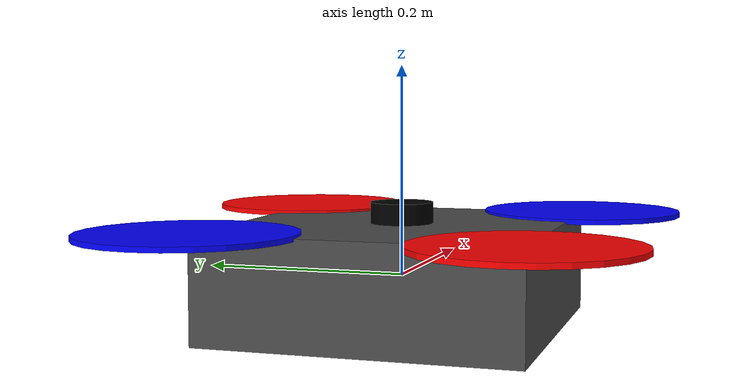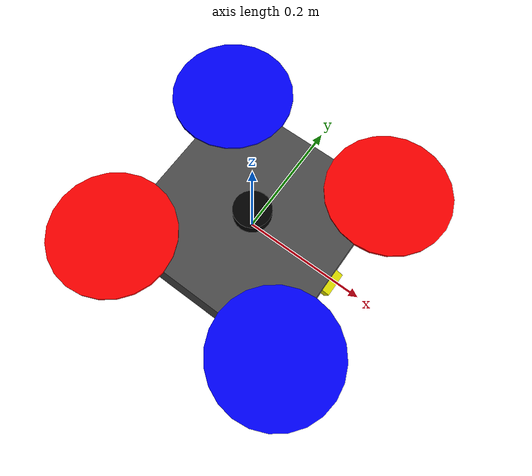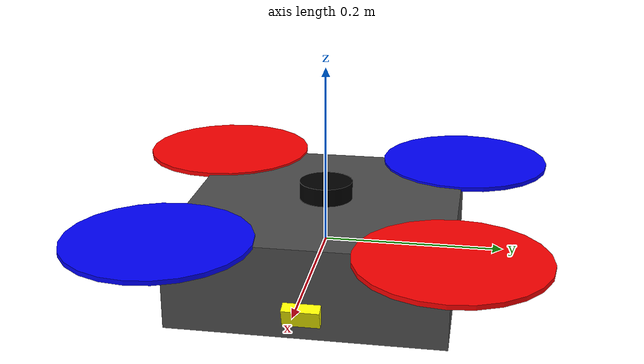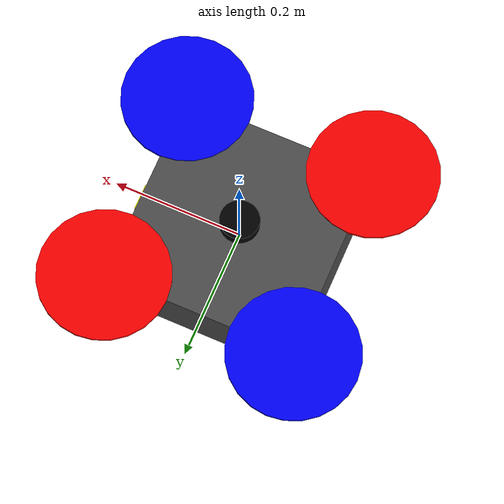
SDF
<?xml version="1.0" ?>
<sdf version="1.9">
  <model name="mini_drone">
    <static>false</static>

    <!-- Main body / base link -->
    <link name="base_link">
      <inertial>
        <mass>1.5</mass>
        <inertia>
          <ixx>0.0125</ixx>
          <iyy>0.0125</iyy>
          <izz>0.0225</izz>
        </inertia>
      </inertial>

      <visual name="body_visual">
        <geometry>
          <box>
            <size>0.3 0.3 0.1</size>
          </box>
        </geometry>
        <material>
          <ambient>0.2 0.2 0.2 1</ambient>
          <diffuse>0.3 0.3 0.3 1</diffuse>
        </material>
      </visual>

      <collision name="body_collision">
        <geometry>
          <box>
            <size>0.3 0.3 0.1</size>
          </box>
        </geometry>
      </collision>

<!-- ARMS (visual only — diagonal struts) -->
      <visual name="arm_fl">
        <pose>0.075 0.075 0.0 0 1.5708 0.7854</pose>
        <geometry><cylinder><radius>0.01</radius><length>0.18</length></cylinder></geometry>
        <material><ambient>0.1 0.1 0.1 1</ambient><diffuse>0.15 0.15 0.15 1</diffuse></material>
      </visual>
      <visual name="arm_fr">
        <pose>0.075 -0.075 0.0 0 1.5708 -0.7854</pose>
        <geometry><cylinder><radius>0.01</radius><length>0.18</length></cylinder></geometry>
        <material><ambient>0.1 0.1 0.1 1</ambient><diffuse>0.15 0.15 0.15 1</diffuse></material>
      </visual>
      <visual name="arm_bl">
        <pose>-0.075 0.075 0.0 0 1.5708 2.3562</pose>
        <geometry><cylinder><radius>0.01</radius><length>0.18</length></cylinder></geometry>
        <material><ambient>0.1 0.1 0.1 1</ambient><diffuse>0.15 0.15 0.15 1</diffuse></material>
      </visual>
      <visual name="arm_br">
        <pose>-0.075 -0.075 0.0 0 1.5708 -2.3562</pose>
        <geometry><cylinder><radius>0.01</radius><length>0.18</length></cylinder></geometry>
        <material><ambient>0.1 0.1 0.1 1</ambient><diffuse>0.15 0.15 0.15 1</diffuse></material>
      </visual>

      <!-- IMU SENSOR -->
      <sensor name="imu_sensor" type="imu">
        <always_on>true</always_on>
        <update_rate>200</update_rate>
        <topic>imu</topic>
        <gz_frame_id>base_link</gz_frame_id>
        <imu>
          <angular_velocity>
            <x><noise type="gaussian"><mean>0</mean><stddev>0.0002</stddev></noise></x>
            <y><noise type="gaussian"><mean>0</mean><stddev>0.0002</stddev></noise></y>
            <z><noise type="gaussian"><mean>0</mean><stddev>0.0002</stddev></noise></z>
          </angular_velocity>
          <linear_acceleration>
            <x><noise type="gaussian"><mean>0</mean><stddev>0.017</stddev></noise></x>
            <y><noise type="gaussian"><mean>0</mean><stddev>0.017</stddev></noise></y>
            <z><noise type="gaussian"><mean>0</mean><stddev>0.017</stddev></noise></z>
          </linear_acceleration>
        </imu>
      </sensor>
    </link>

    <!-- LIDAR LINK AND SENSOR -->
    <link name="lidar_link">
      <pose relative_to="base_link">0 0 0.06 0 0 0</pose>
      <inertial>
        <mass>0.1</mass>
        <inertia>
          <ixx>0.0001</ixx>
          <iyy>0.0001</iyy>
          <izz>0.0001</izz>
        </inertia>
      </inertial>

      <visual name="lidar_visual">
        <geometry>
          <cylinder><radius>0.03</radius><length>0.02</length></cylinder>
        </geometry>
        <material>
          <ambient>0.0 0.0 0.0 1</ambient>
          <diffuse>0.0 0.0 0.0 1</diffuse>
        </material>
      </visual>

      <collision name="lidar_collision">
        <geometry>
          <cylinder><radius>0.03</radius><length>0.02</length></cylinder>
        </geometry>
      </collision>

      <!-- LIDAR SENSOR -->
      <sensor name="lidar_sensor" type="gpu_lidar">
        <always_on>true</always_on>
        <update_rate>10</update_rate>
        <topic>scan</topic>
        <gz_frame_id>lidar_link</gz_frame_id>
        <lidar>
          <scan>
            <horizontal>
              <samples>360</samples>
              <resolution>1</resolution>
              <min_angle>-3.14159</min_angle>
              <max_angle>3.14159</max_angle>
            </horizontal>
          </scan>
          <range>
            <min>0.15</min>
            <max>12.0</max>
            <resolution>0.01</resolution>
          </range>
          <noise>
            <type>gaussian</type>
            <mean>0</mean>
            <stddev>0.005</stddev>
          </noise>
        </lidar>
      </sensor>
    </link>

    <joint name="lidar_joint" type="fixed">
      <parent>base_link</parent>
      <child>lidar_link</child>
    </joint>

    <!-- CAMERA LINK AND SENSOR -->
    <link name="camera_link">
      <pose relative_to="base_link">0.15 0 -0.02 0 0.3 0</pose>
      <inertial>
        <mass>0.01</mass>
        <inertia>
          <ixx>0.00001</ixx>
          <iyy>0.00001</iyy>
          <izz>0.00001</izz>
        </inertia>
      </inertial>

      <visual name="camera_visual">
        <geometry>
          <box><size>0.02 0.04 0.02</size></box>
        </geometry>
        <material>
          <ambient>0.8 0.8 0.0 1</ambient>
          <diffuse>1.0 1.0 0.0 1</diffuse>
        </material>
      </visual>

      <collision name="camera_collision">
        <geometry>
          <box><size>0.02 0.04 0.02</size></box>
        </geometry>
      </collision>

      <!-- CAMERA SENSOR -->
      <sensor name="camera_sensor" type="camera">
        <always_on>true</always_on>
        <update_rate>15</update_rate>
        <topic>camera</topic>
        <gz_frame_id>camera_link</gz_frame_id>
        <camera>
          <horizontal_fov>1.39626</horizontal_fov>
          <image>
            <width>320</width>
            <height>240</height>
            <format>R8G8B8</format>
          </image>
          <clip>
            <near>0.1</near>
            <far>50</far>
          </clip>
        </camera>
      </sensor>
    </link>

    <joint name="camera_joint" type="fixed">
      <parent>base_link</parent>
      <child>camera_link</child>
    </joint>

    <!-- ==================== ROTORS ==================== -->

    <link name="rotor_0">
      <pose relative_to="base_link">0.15 0.15 0.05 0 0 0</pose>
      <inertial>
        <mass>0.005</mass>
        <inertia><ixx>9.75e-07</ixx><iyy>0.000166704</iyy><izz>0.000167604</izz></inertia>
      </inertial>
      <visual name="rotor_0_visual">
        <geometry><cylinder><radius>0.1</radius><length>0.005</length></cylinder></geometry>
        <material><ambient>0.8 0.0 0.0 1</ambient><diffuse>1.0 0.0 0.0 1</diffuse></material>
      </visual>
      <collision name="rotor_0_collision">
        <geometry><cylinder><radius>0.1</radius><length>0.005</length></cylinder></geometry>
      </collision>
    </link>
    <joint name="rotor_0_joint" type="revolute">
      <parent>base_link</parent><child>rotor_0</child>
      <axis><xyz>0 0 1</xyz><limit><lower>-1e+16</lower><upper>1e+16</upper></limit></axis>
    </joint>

    <link name="rotor_1">
      <pose relative_to="base_link">0.15 -0.15 0.05 0 0 0</pose>
      <inertial>
        <mass>0.005</mass>
        <inertia><ixx>9.75e-07</ixx><iyy>0.000166704</iyy><izz>0.000167604</izz></inertia>
      </inertial>
      <visual name="rotor_1_visual">
        <geometry><cylinder><radius>0.1</radius><length>0.005</length></cylinder></geometry>
        <material><ambient>0.0 0.0 0.8 1</ambient><diffuse>0.0 0.0 1.0 1</diffuse></material>
      </visual>
      <collision name="rotor_1_collision">
        <geometry><cylinder><radius>0.1</radius><length>0.005</length></cylinder></geometry>
      </collision>
    </link>
    <joint name="rotor_1_joint" type="revolute">
      <parent>base_link</parent><child>rotor_1</child>
      <axis><xyz>0 0 1</xyz><limit><lower>-1e+16</lower><upper>1e+16</upper></limit></axis>
    </joint>

    <link name="rotor_2">
      <pose relative_to="base_link">-0.15 0.15 0.05 0 0 0</pose>
      <inertial>
        <mass>0.005</mass>
        <inertia><ixx>9.75e-07</ixx><iyy>0.000166704</iyy><izz>0.000167604</izz></inertia>
      </inertial>
      <visual name="rotor_2_visual">
        <geometry><cylinder><radius>0.1</radius><length>0.005</length></cylinder></geometry>
        <material><ambient>0.0 0.0 0.8 1</ambient><diffuse>0.0 0.0 1.0 1</diffuse></material>
      </visual>
      <collision name="rotor_2_collision">
        <geometry><cylinder><radius>0.1</radius><length>0.005</length></cylinder></geometry>
      </collision>
    </link>
    <joint name="rotor_2_joint" type="revolute">
      <parent>base_link</parent><child>rotor_2</child>
      <axis><xyz>0 0 1</xyz><limit><lower>-1e+16</lower><upper>1e+16</upper></limit></axis>
    </joint>

    <link name="rotor_3">
      <pose relative_to="base_link">-0.15 -0.15 0.05 0 0 0</pose>
      <inertial>
        <mass>0.005</mass>
        <inertia><ixx>9.75e-07</ixx><iyy>0.000166704</iyy><izz>0.000167604</izz></inertia>
      </inertial>
      <visual name="rotor_3_visual">
        <geometry><cylinder><radius>0.1</radius><length>0.005</length></cylinder></geometry>
        <material><ambient>0.8 0.0 0.0 1</ambient><diffuse>1.0 0.0 0.0 1</diffuse></material>
      </visual>
      <collision name="rotor_3_collision">
        <geometry><cylinder><radius>0.1</radius><length>0.005</length></cylinder></geometry>
      </collision>
    </link>
    <joint name="rotor_3_joint" type="revolute">
      <parent>base_link</parent><child>rotor_3</child>
      <axis><xyz>0 0 1</xyz><limit><lower>-1e+16</lower><upper>1e+16</upper></limit></axis>
    </joint>

    <!-- ==================== MOTOR PLUGINS ==================== -->

    <plugin filename="gz-sim-multicopter-motor-model-system" name="gz::sim::systems::MulticopterMotorModel">
      <robotNamespace>mini_drone</robotNamespace><jointName>rotor_0_joint</jointName><linkName>rotor_0</linkName>
      <turningDirection>ccw</turningDirection><timeConstantUp>0.0125</timeConstantUp><timeConstantDown>0.025</timeConstantDown>
      <maxRotVelocity>800.0</maxRotVelocity><motorConstant>8.54858e-06</motorConstant><momentConstant>0.016</momentConstant>
      <commandSubTopic>gazebo/command/motor_speed</commandSubTopic><motorNumber>0</motorNumber>
      <rotorDragCoefficient>8.06428e-05</rotorDragCoefficient><rollingMomentCoefficient>1e-06</rollingMomentCoefficient>
      <rotorVelocitySlowdownSim>10</rotorVelocitySlowdownSim><motorType>velocity</motorType>
    </plugin>

    <plugin filename="gz-sim-multicopter-motor-model-system" name="gz::sim::systems::MulticopterMotorModel">
      <robotNamespace>mini_drone</robotNamespace><jointName>rotor_1_joint</jointName><linkName>rotor_1</linkName>
      <turningDirection>cw</turningDirection><timeConstantUp>0.0125</timeConstantUp><timeConstantDown>0.025</timeConstantDown>
      <maxRotVelocity>800.0</maxRotVelocity><motorConstant>8.54858e-06</motorConstant><momentConstant>0.016</momentConstant>
      <commandSubTopic>gazebo/command/motor_speed</commandSubTopic><motorNumber>1</motorNumber>
      <rotorDragCoefficient>8.06428e-05</rotorDragCoefficient><rollingMomentCoefficient>1e-06</rollingMomentCoefficient>
      <rotorVelocitySlowdownSim>10</rotorVelocitySlowdownSim><motorType>velocity</motorType>
    </plugin>

    <plugin filename="gz-sim-multicopter-motor-model-system" name="gz::sim::systems::MulticopterMotorModel">
      <robotNamespace>mini_drone</robotNamespace><jointName>rotor_2_joint</jointName><linkName>rotor_2</linkName>
      <turningDirection>cw</turningDirection><timeConstantUp>0.0125</timeConstantUp><timeConstantDown>0.025</timeConstantDown>
      <maxRotVelocity>800.0</maxRotVelocity><motorConstant>8.54858e-06</motorConstant><momentConstant>0.016</momentConstant>
      <commandSubTopic>gazebo/command/motor_speed</commandSubTopic><motorNumber>2</motorNumber>
      <rotorDragCoefficient>8.06428e-05</rotorDragCoefficient><rollingMomentCoefficient>1e-06</rollingMomentCoefficient>
      <rotorVelocitySlowdownSim>10</rotorVelocitySlowdownSim><motorType>velocity</motorType>
    </plugin>

    <plugin filename="gz-sim-multicopter-motor-model-system" name="gz::sim::systems::MulticopterMotorModel">
      <robotNamespace>mini_drone</robotNamespace><jointName>rotor_3_joint</jointName><linkName>rotor_3</linkName>
      <turningDirection>ccw</turningDirection><timeConstantUp>0.0125</timeConstantUp><timeConstantDown>0.025</timeConstantDown>
      <maxRotVelocity>800.0</maxRotVelocity><motorConstant>8.54858e-06</motorConstant><momentConstant>0.016</momentConstant>
      <commandSubTopic>gazebo/command/motor_speed</commandSubTopic><motorNumber>3</motorNumber>
      <rotorDragCoefficient>8.06428e-05</rotorDragCoefficient><rollingMomentCoefficient>1e-06</rollingMomentCoefficient>
      <rotorVelocitySlowdownSim>10</rotorVelocitySlowdownSim><motorType>velocity</motorType>
    </plugin>

    <!-- ==================== VELOCITY CONTROL PLUGIN ==================== -->

    <plugin filename="gz-sim-multicopter-control-system" name="gz::sim::systems::MulticopterVelocityControl">
      <robotNamespace>mini_drone</robotNamespace>
      <commandSubTopic>cmd_vel</commandSubTopic>
      <enableSubTopic>enable</enableSubTopic>
      <comLinkName>base_link</comLinkName>
      <velocityGain>5 5 2.7</velocityGain>
      <attitudeGain>4 4 0.15</attitudeGain>
      <angularRateGain>0.4 0.52 0.18</angularRateGain>
      <maximumLinearAcceleration>2 2 2</maximumLinearAcceleration>
      <maximumLinearVelocity>5 5 5</maximumLinearVelocity>
      <maximumAngularVelocity>3 3 3</maximumAngularVelocity>
      <rotorConfiguration>
        <rotor><jointName>rotor_0_joint</jointName><forceConstant>8.54858e-06</forceConstant><momentConstant>0.016</momentConstant><direction>1</direction></rotor>
        <rotor><jointName>rotor_1_joint</jointName><forceConstant>8.54858e-06</forceConstant><momentConstant>0.016</momentConstant><direction>-1</direction></rotor>
        <rotor><jointName>rotor_2_joint</jointName><forceConstant>8.54858e-06</forceConstant><momentConstant>0.016</momentConstant><direction>-1</direction></rotor>
        <rotor><jointName>rotor_3_joint</jointName><forceConstant>8.54858e-06</forceConstant><momentConstant>0.016</momentConstant><direction>1</direction></rotor>
      </rotorConfiguration>
    </plugin>

    <!-- ==================== ODOMETRY PUBLISHER ==================== -->
    <plugin filename="gz-sim-odometry-publisher-system"
            name="gz::sim::systems::OdometryPublisher">
      <odom_frame>odom</odom_frame>
      <robot_base_frame>base_link</robot_base_frame>
      <odom_publish_frequency>50</odom_publish_frequency>
    </plugin>

  </model>
</sdf>
